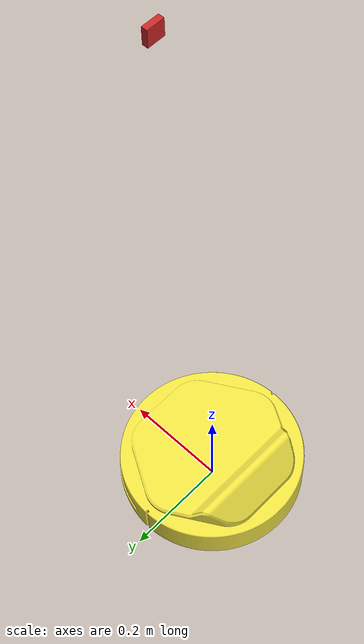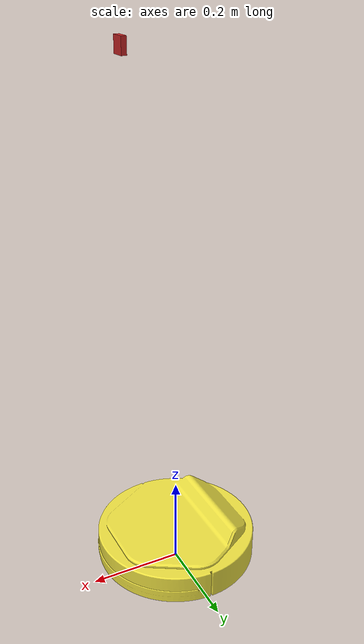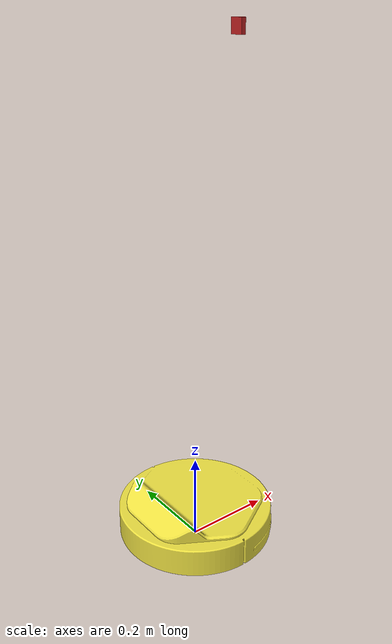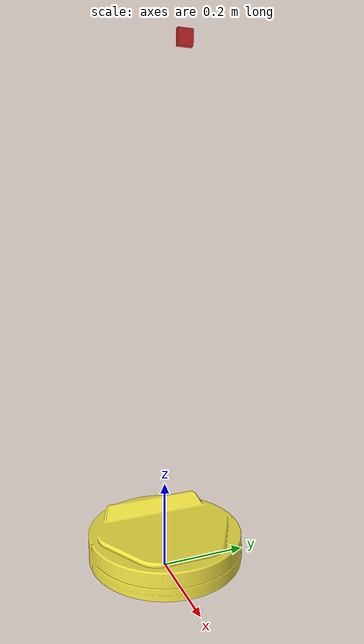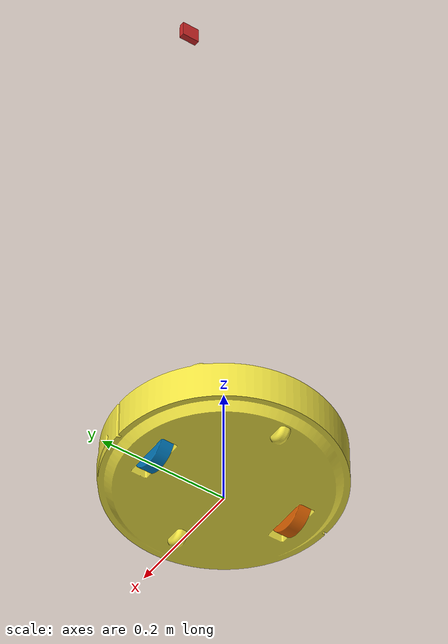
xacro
<?xml version="1.0"?>
<robot name="kobuki_standalone"
       xmlns:sensor="http://playerstage.sourceforge.net/gazebo/xmlschema/#sensor"
       xmlns:controller="http://playerstage.sourceforge.net/gazebo/xmlschema/#controller"
       xmlns:interface="http://playerstage.sourceforge.net/gazebo/xmlschema/#interface"
       xmlns:xacro="http://ros.org/wiki/xacro">

  <!-- Defines the kobuki component tag. -->
  <xacro:include filename="$(find kobuki_description)/urdf/kobuki.urdf.xacro" />
  <xacro:kobuki/>
</robot>

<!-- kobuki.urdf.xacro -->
<robot name="kobuki" xmlns:xacro="http://ros.org/wiki/xacro">
  <xacro:include filename="$(find kobuki_description)/urdf/common_properties.urdf.xacro"/>
  <xacro:include filename="$(find kobuki_description)/urdf/kobuki_gazebo.urdf.xacro"/>
  <xacro:include filename="$(find kobuki_description)/urdf/kinect.urdf.xacro"/>

  <!-- Kobuki -->
  <xacro:macro name="kobuki">
    <link name="base_footprint"/>
    <joint name="base_joint" type="fixed">
      <origin xyz="0 0 0.0102" rpy="0 0 0" />
      <parent link="base_footprint"/>
      <child link="base_link" />
    </joint>
    <link name="base_link">
      <visual>
        <geometry>
          <!-- new mesh -->
          <mesh filename="package://kobuki_description/meshes/main_body.dae" />
        </geometry>
        <origin xyz="0.001 0.0 .05199" rpy="0 0 0"/>
      </visual>
      <collision name="base">
        <geometry>
          <cylinder length="0.10938" radius="0.178"/>
        </geometry>
        <origin xyz="0.0 0 0.05949" rpy="0 0 0"/>
      </collision>
      <inertial>
        <!-- COM experimentally determined -->
        <origin xyz="0.01 0 0"/>
        <mass value="2.4"/> <!-- 2.4/2.6 kg for small/big battery pack -->
        <inertia ixx="0.019995" ixy="0.0" ixz="0.0"
                 iyy="0.019995" iyz="0.0"
                 izz="0.03675" />
      </inertial>
    </link>

    <joint name="wheel_left_joint" type="continuous">
      <parent link="base_link"/>
      <child link="wheel_left_link"/>
      <origin xyz="0.00 ${0.23/2} 0.0250" rpy="${-M_PI/2} 0 0"/>
      <axis xyz="0 0 1"/>
    </joint>
    <link name="wheel_left_link">
      <visual>
        <geometry>
          <mesh filename="package://kobuki_description/meshes/wheel.dae"/>
        </geometry>
        <origin xyz="0 0 0" rpy="0 0 0"/>
      </visual>
      <collision>
        <geometry>
          <cylinder length="0.0206" radius="0.035"/>
        </geometry>
        <origin rpy="0 0 0" xyz="0 0 0"/>
      </collision>
      <inertial>
        <mass value="0.01" />
        <origin xyz="0 0 0" />
        <inertia ixx="0.001" ixy="0.0" ixz="0.0"
                 iyy="0.001" iyz="0.0"
                 izz="0.001" />
      </inertial>
    </link>

    <joint name="wheel_right_joint" type="continuous">
      <parent link="base_link"/>
      <child link="wheel_right_link"/>
      <origin xyz="0.00 -${0.23/2} 0.0250" rpy="${-M_PI/2} 0 0"/>
      <axis xyz="0 0 1"/>
    </joint>
    <link name="wheel_right_link">
      <visual>
        <geometry>
          <mesh filename="package://kobuki_description/meshes/wheel.dae"/>
        </geometry>
        <origin xyz="0 0 0" rpy="0 0 0"/>
      </visual>
      <collision>
        <geometry>
          <cylinder length="0.0206" radius="0.035"/>
        </geometry>
        <origin rpy="0 0 0" xyz="0 0 0"/>
      </collision>
      <inertial>
        <mass value="0.01" />
        <origin xyz="0 0 0" />
        <inertia ixx="0.001" ixy="0.0" ixz="0.0"
                 iyy="0.001" iyz="0.0"
                 izz="0.001" />
      </inertial>
    </link>

    <joint name="caster_front_joint" type="fixed">
      <parent link="base_link"/>
      <child link="caster_front_link"/>
      <origin xyz="0.115 0.0 0.007" rpy="${-M_PI/2} 0 0"/>
    </joint>
    <link name="caster_front_link">
      <collision>
        <geometry>
          <cylinder length="0.0176" radius="0.017"/>
        </geometry>
        <origin rpy="0 0 0" xyz="0 0 0"/>
      </collision>
      <inertial>
        <mass value="0.01" />
        <origin xyz="0 0 0" />
        <inertia ixx="0.001" ixy="0.0" ixz="0.0"
                 iyy="0.001" iyz="0.0"
                 izz="0.001" />
      </inertial>
    </link>

    <joint name="caster_back_joint" type="fixed">
      <parent link="base_link"/>
      <child link="caster_back_link"/>
      <origin xyz="-0.135 0.0 0.009" rpy="${-M_PI/2} 0 0"/>
    </joint>
    <link name="caster_back_link">
      <collision>
        <geometry>
          <cylinder length="0.0176" radius="0.017"/>
        </geometry>
        <origin rpy="0 0 0" xyz="0 0 0"/>
      </collision>
      <inertial>
        <mass value="0.01" />
        <origin xyz="0 0 0" />
        <inertia ixx="0.001" ixy="0.0" ixz="0.0"
                 iyy="0.001" iyz="0.0"
                 izz="0.001" />
      </inertial>
    </link>

    <!-- Kobuki's sensors -->
    <joint name="gyro_joint" type="fixed">
      <axis xyz="0 1 0"/>
      <origin xyz="0.056 0.062 0.0202" rpy="0 0 0"/>
      <parent link="base_link"/>
      <child link="gyro_link"/>
    </joint>
    <link name="gyro_link">
      <inertial>
        <mass value="0.001"/>
        <origin xyz="0 0 0" rpy="0 0 0"/>
        <inertia ixx="0.0001" ixy="0" ixz="0"
                 iyy="0.000001" iyz="0"
                 izz="0.0001"/>
      </inertial>
    </link>

    <joint name="cliff_sensor_left_joint" type="fixed">
      <origin xyz="0.08734 0.13601 0.0214" rpy="0 ${M_PI/2} 0" />
      <parent link="base_link"/>
      <child link="cliff_sensor_left_link" />
    </joint>
    <link name="cliff_sensor_left_link">
      <inertial>
        <mass value="0.0001" />
        <origin xyz="0 0 0" />
        <inertia ixx="0.0001" ixy="0.0" ixz="0.0"
                 iyy="0.0001" iyz="0.0"
                 izz="0.0001" />
      </inertial>
    </link>

    <joint name="cliff_sensor_right_joint" type="fixed">
      <origin xyz="0.085 -0.13601 0.0214" rpy="0 ${M_PI/2} 0" />
      <parent link="base_link"/>
      <child link="cliff_sensor_right_link" />
    </joint>
    <link name="cliff_sensor_right_link">
      <inertial>
        <mass value="0.0001" />
        <origin xyz="0 0 0" />
        <inertia ixx="0.0001" ixy="0.0" ixz="0.0"
                 iyy="0.0001" iyz="0.0"
                 izz="0.0001" />
      </inertial>
    </link>

    <joint name="cliff_sensor_front_joint" type="fixed">
      <origin xyz="0.156 0.00 0.0214" rpy="0 ${M_PI/2} 0" />
      <parent link="base_link"/>
      <child link="cliff_sensor_front_link" />
    </joint>
    <link name="cliff_sensor_front_link">
      <inertial>
        <mass value="0.0001" />
        <origin xyz="0 0 0" />
        <inertia ixx="0.0001" ixy="0.0" ixz="0.0"
                 iyy="0.0001" iyz="0.0"
                 izz="0.0001" />
      </inertial>
    </link>

    <!-- Kobuki Gazebo simulation details -->
    <xacro:kobuki_sim/>

  </xacro:macro>
</robot>

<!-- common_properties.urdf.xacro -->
<!--
  Various useful properties such as constants and materials
 -->
<robot name="xacro_properties" xmlns:xacro="http://ros.org/wiki/xacro">
  <xacro:property name="M_PI" value="3.1415926535897931" />
  <xacro:property name="material_white">
    <material name="white">
      <color rgba="1 1 1 1"/>
    </material>
  </xacro:property>
  <xacro:property name="material_grey">
    <material name="grey">
      <color rgba="0.5 0.5 0.5 1"/>
    </material>
  </xacro:property>
  <xacro:property name="material_light_grey">
    <material name="light_grey">
      <color rgba="0.6 0.6 0.6 1"/>
    </material>
  </xacro:property>
  <xacro:property name="material_dark_grey">
    <material name="dark_grey">
      <color rgba="0.3 0.3 0.3 1"/>
    </material>
  </xacro:property>
  <xacro:property name="material_black">
    <material name="black">
      <color rgba="0.1 0.1 0.1 1"/>
    </material>
  </xacro:property>
  <xacro:property name="material_red">
    <material name="red">
      <color rgba="1 0 0 1"/>
    </material>
  </xacro:property>
  <xacro:property name="material_green">
    <material name="green">
      <color rgba="0.0 0.8 0.0 1"/>
    </material>
  </xacro:property>
  <xacro:property name="material_blue">
    <material name="blue">
      <color rgba="0.0 0.0 1.0 1"/>
    </material>
  </xacro:property>
  <xacro:property name="material_grey_blue">
    <material name="grey_blue">
      <color rgba="0.4 0.4 1.0 1"/>
    </material>
  </xacro:property>
  <xacro:property name="material_orange">
    <material name="orange">
      <color rgba="1.0 0.7 0.0 1"/>
    </material>
  </xacro:property>
</robot>

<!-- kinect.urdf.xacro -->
<robot xmlns:xacro="http://www.ros.org/wiki/xacro">
    <xacro:property name="camera_name" value="my_camera"/>

    <!-- Define the joint connecting the base_link to the camera_link -->
    <joint name="camera_joint" type="fixed">
        <parent link="base_link"/>
        <child link="camera_link"/>
        <origin xyz="0.1 0 1.1" rpy="0 0 0"/>
    </joint>

    <!-- Define the camera_link -->
    <link name="camera_link">
        <visual>
            <geometry>
                <box size="0.010 0.03 0.03"/>
            </geometry>
            <material name="red"/>
        </visual>
    </link>

    <!-- Define the joint connecting the camera_link to the camera_link_optical -->
    <joint name="camera_optical_joint" type="fixed">
        <parent link="camera_link"/>
        <child link="camera_link_optical"/>
        <origin xyz="0 0 0" rpy="${-pi/2} 0 ${-pi}"/>
    </joint>

    <!-- Define the camera_link_optical -->
    <link name="camera_link_optical"></link>

    <!-- Define the sensor in Gazebo -->
    <gazebo reference="camera_link">
        <sensor name="camera" type="depth">
            <update_rate>0</update_rate>
            <camera>
                <horizontal_fov>1.047198</horizontal_fov>
                <image>
                    <width>640</width>
                    <height>480</height>
                    <format>R8G8B8</format>
                </image>
                <clip>
                    <near>0.05</near>
                    <far>6</far>
                </clip>
            </camera>
            <plugin name="camera_controller" filename="libgazebo_ros_openni_kinect.so">
                <baseline>0.2</baseline>
                <alwaysOn>true</alwaysOn>
                <updateRate>0</updateRate>
                <cameraName>${camera_name}_ir</cameraName>
                <imageTopicName>/${camera_name}/color/image_raw</imageTopicName>
                <cameraInfoTopicName>/${camera_name}/color/camera_info</cameraInfoTopicName>
                <depthImageTopicName>/${camera_name}/depth/image_raw</depthImageTopicName>
                <depthImageInfoTopicName>/${camera_name}/depth/camera_info</depthImageInfoTopicName>
                <pointCloudTopicName>/${camera_name}/depth/points</pointCloudTopicName>
                <frameName>camera_link_optical</frameName>
                <pointCloudCutoff>0.05</pointCloudCutoff>
                <pointCloudCutoffMax>6.0</pointCloudCutoffMax>
                <distortionK1>0.00000001</distortionK1>
                <distortionK2>0.00000001</distortionK2>
                <distortionK3>0.00000001</distortionK3>
                <distortionT1>0.00000001</distortionT1>
                <distortionT2>0.00000001</distortionT2>
                <CxPrime>0</CxPrime>
                <Cx>0</Cx>
                <Cy>0</Cy>
                <focalLength>0</focalLength>
                <hackBaseline>0</hackBaseline>
            </plugin>
        </sensor>
    </gazebo>

</robot>
